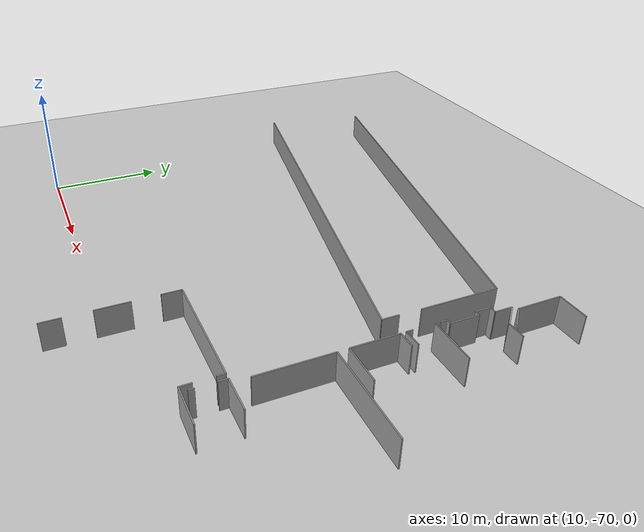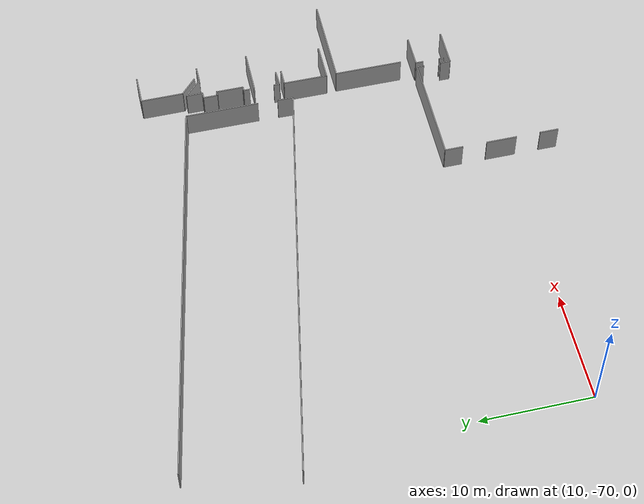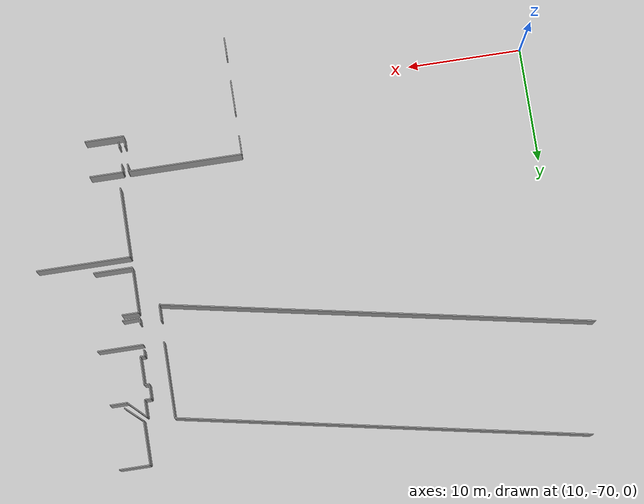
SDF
<sdf version="1.6">
 <world name="default">
  <model name="ground_plane">
   <static>1</static>
   <link name="link">
    <collision name="collision">
     <geometry><plane><normal>0 0 1</normal><size>100 100</size></plane></geometry>
     <surface><friction><ode><mu>100</mu><mu2>50</mu2></ode></friction></surface>
    </collision>
    <visual name="visual">
     <cast_shadows>0</cast_shadows>
     <geometry><plane><normal>0 0 1</normal><size>100 100</size></plane></geometry>
     <material>
      <script><uri>file://media/materials/scripts/gazebo.material</uri><name>Gazebo/Grey</name></script>
     </material>
    </visual>
   </link>
  </model>
  <model name="50023964">
   <static>1</static>
   <link name="Wall_0">
    <collision name="Wall_0_Collision">
     <geometry><box><size>1.6860690356 0.1 2.5</size></box></geometry>
     <pose>0.843034517799 0 1.25 0 0 0</pose>
    </collision>
    <visual name="Wall_0_Visual">
     <pose>0.843034517799 0 1.25 0 0 0</pose>
     <geometry><box><size>1.6860690356 0.1 2.5</size></box></geometry>
     <material>
      <script><uri>file://media/materials/scripts/gazebo.material</uri><name>Gazebo/Grey</name></script>
      <ambient>1 1 1 1</ambient>
     </material>
    </visual>
    <pose>117.97580261 -149.084119272 0 0 0 1.57079632679</pose>
   </link>
   <link name="Wall_1">
    <collision name="Wall_1_Collision">
     <geometry><box><size>2.77234765489 0.1 2.5</size></box></geometry>
     <pose>1.38617382744 0 1.25 0 0 0</pose>
    </collision>
    <visual name="Wall_1_Visual">
     <pose>1.38617382744 0 1.25 0 0 0</pose>
     <geometry><box><size>2.77234765489 0.1 2.5</size></box></geometry>
     <material>
      <script><uri>file://media/materials/scripts/gazebo.material</uri><name>Gazebo/Grey</name></script>
      <ambient>1 1 1 1</ambient>
     </material>
    </visual>
    <pose>117.97580261 -145.190435362 0 0 0 1.57079632679</pose>
   </link>
   <link name="Wall_2">
    <collision name="Wall_2_Collision">
     <geometry><box><size>1.64440633832 0.1 2.5</size></box></geometry>
     <pose>0.822203169159 0 1.25 0 0 0</pose>
    </collision>
    <visual name="Wall_2_Visual">
     <pose>0.822203169159 0 1.25 0 0 0</pose>
     <geometry><box><size>1.64440633832 0.1 2.5</size></box></geometry>
     <material>
      <script><uri>file://media/materials/scripts/gazebo.material</uri><name>Gazebo/Grey</name></script>
      <ambient>1 1 1 1</ambient>
     </material>
    </visual>
    <pose>117.97580261 -140.209202629 0 0 0 1.57079632679</pose>
   </link>
   <link name="Wall_3">
    <collision name="Wall_3_Collision">
     <geometry><box><size>9.94315836271 0.1 2.5</size></box></geometry>
     <pose>4.97157918135 0 1.25 0 0 0</pose>
    </collision>
    <visual name="Wall_3_Visual">
     <pose>4.97157918135 0 1.25 0 0 0</pose>
     <geometry><box><size>9.94315836271 0.1 2.5</size></box></geometry>
     <material>
      <script><uri>file://media/materials/scripts/gazebo.material</uri><name>Gazebo/Grey</name></script>
      <ambient>1 1 1 1</ambient>
     </material>
    </visual>
    <pose>117.97580261 -138.564796291 0 0 0 0.0</pose>
   </link>
   <link name="Wall_4">
    <collision name="Wall_4_Collision">
     <geometry><box><size>0.652122828745 0.1 2.5</size></box></geometry>
     <pose>0.326061414372 0 1.25 0 0 0</pose>
    </collision>
    <visual name="Wall_4_Visual">
     <pose>0.326061414372 0 1.25 0 0 0</pose>
     <geometry><box><size>0.652122828745 0.1 2.5</size></box></geometry>
     <material>
      <script><uri>file://media/materials/scripts/gazebo.material</uri><name>Gazebo/Grey</name></script>
      <ambient>1 1 1 1</ambient>
     </material>
    </visual>
    <pose>127.918960973 -138.564796291 0 0 0 -1.57079632679</pose>
   </link>
   <link name="Wall_5">
    <collision name="Wall_5_Collision">
     <geometry><box><size>0.913276809247 0.1 2.5</size></box></geometry>
     <pose>0.456638404624 0 1.25 0 0 0</pose>
    </collision>
    <visual name="Wall_5_Visual">
     <pose>0.456638404624 0 1.25 0 0 0</pose>
     <geometry><box><size>0.913276809247 0.1 2.5</size></box></geometry>
     <material>
      <script><uri>file://media/materials/scripts/gazebo.material</uri><name>Gazebo/Grey</name></script>
      <ambient>1 1 1 1</ambient>
     </material>
    </visual>
    <pose>127.918960973 -140.798831412 0 0 0 -1.57079632679</pose>
   </link>
   <link name="Wall_6">
    <collision name="Wall_6_Collision">
     <geometry><box><size>3.40033660411 0.1 2.5</size></box></geometry>
     <pose>1.70016830205 0 1.25 0 0 0</pose>
    </collision>
    <visual name="Wall_6_Visual">
     <pose>1.70016830205 0 1.25 0 0 0</pose>
     <geometry><box><size>3.40033660411 0.1 2.5</size></box></geometry>
     <material>
      <script><uri>file://media/materials/scripts/gazebo.material</uri><name>Gazebo/Grey</name></script>
      <ambient>1 1 1 1</ambient>
     </material>
    </visual>
    <pose>127.918960973 -141.712108221 0 0 0 0.0</pose>
   </link>
   <link name="Wall_21">
    <collision name="Wall_21_Collision">
     <geometry><box><size>0.448382077419 0.1 2.5</size></box></geometry>
     <pose>0.224191038709 0 1.25 0 0 0</pose>
    </collision>
    <visual name="Wall_21_Visual">
     <pose>0.224191038709 0 1.25 0 0 0</pose>
     <geometry><box><size>0.448382077419 0.1 2.5</size></box></geometry>
     <material>
      <script><uri>file://media/materials/scripts/gazebo.material</uri><name>Gazebo/Grey</name></script>
      <ambient>1 1 1 1</ambient>
     </material>
    </visual>
    <pose>128.425264361 -141.255342796 0 0 0 1.57079632679</pose>
   </link>
   <link name="Wall_22">
    <collision name="Wall_22_Collision">
     <geometry><box><size>0.719951732241 0.1 2.5</size></box></geometry>
     <pose>0.35997586612 0 1.25 0 0 0</pose>
    </collision>
    <visual name="Wall_22_Visual">
     <pose>0.35997586612 0 1.25 0 0 0</pose>
     <geometry><box><size>0.719951732241 0.1 2.5</size></box></geometry>
     <material>
      <script><uri>file://media/materials/scripts/gazebo.material</uri><name>Gazebo/Grey</name></script>
      <ambient>1 1 1 1</ambient>
     </material>
    </visual>
    <pose>128.425264361 -139.287034391 0 0 0 1.57079632679</pose>
   </link>
   <link name="Wall_23">
    <collision name="Wall_23_Collision">
     <geometry><box><size>2.89758978756 0.1 2.5</size></box></geometry>
     <pose>1.44879489378 0 1.25 0 0 0</pose>
    </collision>
    <visual name="Wall_23_Visual">
     <pose>1.44879489378 0 1.25 0 0 0</pose>
     <geometry><box><size>2.89758978756 0.1 2.5</size></box></geometry>
     <material>
      <script><uri>file://media/materials/scripts/gazebo.material</uri><name>Gazebo/Grey</name></script>
      <ambient>1 1 1 1</ambient>
     </material>
    </visual>
    <pose>128.425264361 -138.567082659 0 0 0 0.0</pose>
   </link>
   <link name="Wall_32">
    <collision name="Wall_32_Collision">
     <geometry><box><size>6.13051348004 0.1 2.5</size></box></geometry>
     <pose>3.06525674002 0 1.25 0 0 0</pose>
    </collision>
    <visual name="Wall_32_Visual">
     <pose>3.06525674002 0 1.25 0 0 0</pose>
     <geometry><box><size>6.13051348004 0.1 2.5</size></box></geometry>
     <material>
      <script><uri>file://media/materials/scripts/gazebo.material</uri><name>Gazebo/Grey</name></script>
      <ambient>1 1 1 1</ambient>
     </material>
    </visual>
    <pose>128.83452415 -137.215585405 0 0 0 1.57079632679</pose>
   </link>
   <link name="Wall_33">
    <collision name="Wall_33_Collision">
     <geometry><box><size>8.17579625925 0.1 2.5</size></box></geometry>
     <pose>4.08789812962 0 1.25 0 0 0</pose>
    </collision>
    <visual name="Wall_33_Visual">
     <pose>4.08789812962 0 1.25 0 0 0</pose>
     <geometry><box><size>8.17579625925 0.1 2.5</size></box></geometry>
     <material>
      <script><uri>file://media/materials/scripts/gazebo.material</uri><name>Gazebo/Grey</name></script>
      <ambient>1 1 1 1</ambient>
     </material>
    </visual>
    <pose>128.83452415 -131.085071925 0 0 0 0.0</pose>
   </link>
   <link name="Wall_103">
    <collision name="Wall_103_Collision">
     <geometry><box><size>0.538058492903 0.1 2.5</size></box></geometry>
     <pose>0.269029246451 0 1.25 0 0 0</pose>
    </collision>
    <visual name="Wall_103_Visual">
     <pose>0.269029246451 0 1.25 0 0 0</pose>
     <geometry><box><size>0.538058492903 0.1 2.5</size></box></geometry>
     <material>
      <script><uri>file://media/materials/scripts/gazebo.material</uri><name>Gazebo/Grey</name></script>
      <ambient>1 1 1 1</ambient>
     </material>
    </visual>
    <pose>128.790575085 -125.74513353 0 0 0 1.57079632679</pose>
   </link>
   <link name="Wall_104">
    <collision name="Wall_104_Collision">
     <geometry><box><size>3.98056587596 0.1 2.5</size></box></geometry>
     <pose>1.99028293798 0 1.25 0 0 0</pose>
    </collision>
    <visual name="Wall_104_Visual">
     <pose>1.99028293798 0 1.25 0 0 0</pose>
     <geometry><box><size>3.98056587596 0.1 2.5</size></box></geometry>
     <material>
      <script><uri>file://media/materials/scripts/gazebo.material</uri><name>Gazebo/Grey</name></script>
      <ambient>1 1 1 1</ambient>
     </material>
    </visual>
    <pose>128.790575085 -123.385602236 0 0 0 0.0</pose>
   </link>
   <link name="Wall_116">
    <collision name="Wall_116_Collision">
     <geometry><box><size>1.49210020066 0.1 2.5</size></box></geometry>
     <pose>0.74605010033 0 1.25 0 0 0</pose>
    </collision>
    <visual name="Wall_116_Visual">
     <pose>0.74605010033 0 1.25 0 0 0</pose>
     <geometry><box><size>1.49210020066 0.1 2.5</size></box></geometry>
     <material>
      <script><uri>file://media/materials/scripts/gazebo.material</uri><name>Gazebo/Grey</name></script>
      <ambient>1 1 1 1</ambient>
     </material>
    </visual>
    <pose>130.281540758 -125.686958179 0 0 0 -3.10259386462</pose>
   </link>
   <link name="Wall_117">
    <collision name="Wall_117_Collision">
     <geometry><box><size>1.9863672845 0.1 2.5</size></box></geometry>
     <pose>0.993183642252 0 1.25 0 0 0</pose>
    </collision>
    <visual name="Wall_117_Visual">
     <pose>0.993183642252 0 1.25 0 0 0</pose>
     <geometry><box><size>1.9863672845 0.1 2.5</size></box></geometry>
     <material>
      <script><uri>file://media/materials/scripts/gazebo.material</uri><name>Gazebo/Grey</name></script>
      <ambient>1 1 1 1</ambient>
     </material>
    </visual>
    <pose>131.158743768 -118.232129815 0 0 0 2.40975668548</pose>
   </link>
   <link name="Wall_118">
    <collision name="Wall_118_Collision">
     <geometry><box><size>3.82538366899 0.1 2.5</size></box></geometry>
     <pose>1.9126918345 0 1.25 0 0 0</pose>
    </collision>
    <visual name="Wall_118_Visual">
     <pose>1.9126918345 0 1.25 0 0 0</pose>
     <geometry><box><size>3.82538366899 0.1 2.5</size></box></geometry>
     <material>
      <script><uri>file://media/materials/scripts/gazebo.material</uri><name>Gazebo/Grey</name></script>
      <ambient>1 1 1 1</ambient>
     </material>
    </visual>
    <pose>129.680988219 -116.904766441 0 0 0 1.57517935093</pose>
   </link>
   <link name="Wall_119">
    <collision name="Wall_119_Collision">
     <geometry><box><size>2.65015401226 0.1 2.5</size></box></geometry>
     <pose>1.32507700613 0 1.25 0 0 0</pose>
    </collision>
    <visual name="Wall_119_Visual">
     <pose>1.32507700613 0 1.25 0 0 0</pose>
     <geometry><box><size>2.65015401226 0.1 2.5</size></box></geometry>
     <material>
      <script><uri>file://media/materials/scripts/gazebo.material</uri><name>Gazebo/Grey</name></script>
      <ambient>1 1 1 1</ambient>
     </material>
    </visual>
    <pose>129.664221524 -113.079419517 0 0 0 0.0</pose>
   </link>
   <link name="Wall_123">
    <collision name="Wall_123_Collision">
     <geometry><box><size>0.551776698104 0.1 2.5</size></box></geometry>
     <pose>0.275888349052 0 1.25 0 0 0</pose>
    </collision>
    <visual name="Wall_123_Visual">
     <pose>0.275888349052 0 1.25 0 0 0</pose>
     <geometry><box><size>0.551776698104 0.1 2.5</size></box></geometry>
     <material>
      <script><uri>file://media/materials/scripts/gazebo.material</uri><name>Gazebo/Grey</name></script>
      <ambient>1 1 1 1</ambient>
     </material>
    </visual>
    <pose>128.799212473 -122.952716649 0 0 0 1.57079632679</pose>
   </link>
   <link name="Wall_124">
    <collision name="Wall_124_Collision">
     <geometry><box><size>0.392239052428 0.1 2.5</size></box></geometry>
     <pose>0.196119526214 0 1.25 0 0 0</pose>
    </collision>
    <visual name="Wall_124_Visual">
     <pose>0.196119526214 0 1.25 0 0 0</pose>
     <geometry><box><size>0.392239052428 0.1 2.5</size></box></geometry>
     <material>
      <script><uri>file://media/materials/scripts/gazebo.material</uri><name>Gazebo/Grey</name></script>
      <ambient>1 1 1 1</ambient>
     </material>
    </visual>
    <pose>128.799212473 -122.400939951 0 0 0 0.0</pose>
   </link>
   <link name="Wall_125">
    <collision name="Wall_125_Collision">
     <geometry><box><size>2.450985996 0.1 2.5</size></box></geometry>
     <pose>1.225492998 0 1.25 0 0 0</pose>
    </collision>
    <visual name="Wall_125_Visual">
     <pose>1.225492998 0 1.25 0 0 0</pose>
     <geometry><box><size>2.450985996 0.1 2.5</size></box></geometry>
     <material>
      <script><uri>file://media/materials/scripts/gazebo.material</uri><name>Gazebo/Grey</name></script>
      <ambient>1 1 1 1</ambient>
     </material>
    </visual>
    <pose>129.191451526 -122.400939951 0 0 0 1.57079632679</pose>
   </link>
   <link name="Wall_126">
    <collision name="Wall_126_Collision">
     <geometry><box><size>0.419929503668 0.1 2.5</size></box></geometry>
     <pose>0.209964751834 0 1.25 0 0 0</pose>
    </collision>
    <visual name="Wall_126_Visual">
     <pose>0.209964751834 0 1.25 0 0 0</pose>
     <geometry><box><size>0.419929503668 0.1 2.5</size></box></geometry>
     <material>
      <script><uri>file://media/materials/scripts/gazebo.material</uri><name>Gazebo/Grey</name></script>
      <ambient>1 1 1 1</ambient>
     </material>
    </visual>
    <pose>129.191451526 -119.949953955 0 0 0 3.14159265359</pose>
   </link>
   <link name="Wall_127">
    <collision name="Wall_127_Collision">
     <geometry><box><size>1.27579308374 0.1 2.5</size></box></geometry>
     <pose>0.637896541869 0 1.25 0 0 0</pose>
    </collision>
    <visual name="Wall_127_Visual">
     <pose>0.637896541869 0 1.25 0 0 0</pose>
     <geometry><box><size>1.27579308374 0.1 2.5</size></box></geometry>
     <material>
      <script><uri>file://media/materials/scripts/gazebo.material</uri><name>Gazebo/Grey</name></script>
      <ambient>1 1 1 1</ambient>
     </material>
    </visual>
    <pose>128.771522022 -119.949953955 0 0 0 1.57079632679</pose>
   </link>
   <link name="Wall_128">
    <collision name="Wall_128_Collision">
     <geometry><box><size>0.568289352513 0.1 2.5</size></box></geometry>
     <pose>0.284144676257 0 1.25 0 0 0</pose>
    </collision>
    <visual name="Wall_128_Visual">
     <pose>0.284144676257 0 1.25 0 0 0</pose>
     <geometry><box><size>0.568289352513 0.1 2.5</size></box></geometry>
     <material>
      <script><uri>file://media/materials/scripts/gazebo.material</uri><name>Gazebo/Grey</name></script>
      <ambient>1 1 1 1</ambient>
     </material>
    </visual>
    <pose>128.771522022 -118.674160871 0 0 0 0.0</pose>
   </link>
   <link name="Wall_129">
    <collision name="Wall_129_Collision">
     <geometry><box><size>1.49020355022 0.1 2.5</size></box></geometry>
     <pose>0.74510177511 0 1.25 0 0 0</pose>
    </collision>
    <visual name="Wall_129_Visual">
     <pose>0.74510177511 0 1.25 0 0 0</pose>
     <geometry><box><size>1.49020355022 0.1 2.5</size></box></geometry>
     <material>
      <script><uri>file://media/materials/scripts/gazebo.material</uri><name>Gazebo/Grey</name></script>
      <ambient>1 1 1 1</ambient>
     </material>
    </visual>
    <pose>129.339811375 -118.674160871 0 0 0 1.57079632679</pose>
   </link>
   <link name="Wall_130">
    <collision name="Wall_130_Collision">
     <geometry><box><size>2.10704271308 0.1 2.5</size></box></geometry>
     <pose>1.05352135654 0 1.25 0 0 0</pose>
    </collision>
    <visual name="Wall_130_Visual">
     <pose>1.05352135654 0 1.25 0 0 0</pose>
     <geometry><box><size>2.10704271308 0.1 2.5</size></box></geometry>
     <material>
      <script><uri>file://media/materials/scripts/gazebo.material</uri><name>Gazebo/Grey</name></script>
      <ambient>1 1 1 1</ambient>
     </material>
    </visual>
    <pose>129.339811375 -117.183957321 0 0 0 -0.764168301524</pose>
   </link>
   <link name="Wall_131">
    <collision name="Wall_131_Collision">
     <geometry><box><size>1.47064240577 0.1 2.5</size></box></geometry>
     <pose>0.735321202883 0 1.25 0 0 0</pose>
    </collision>
    <visual name="Wall_131_Visual">
     <pose>0.735321202883 0 1.25 0 0 0</pose>
     <geometry><box><size>1.47064240577 0.1 2.5</size></box></geometry>
     <material>
      <script><uri>file://media/materials/scripts/gazebo.material</uri><name>Gazebo/Grey</name></script>
      <ambient>1 1 1 1</ambient>
     </material>
    </visual>
    <pose>130.861007907 -118.641897685 0 0 0 0.0</pose>
   </link>
   <link name="Wall_138">
    <collision name="Wall_138_Collision">
     <geometry><box><size>3.38077545966 0.1 2.5</size></box></geometry>
     <pose>1.69038772983 0 1.25 0 0 0</pose>
    </collision>
    <visual name="Wall_138_Visual">
     <pose>1.69038772983 0 1.25 0 0 0</pose>
     <geometry><box><size>3.38077545966 0.1 2.5</size></box></geometry>
     <material>
      <script><uri>file://media/materials/scripts/gazebo.material</uri><name>Gazebo/Grey</name></script>
      <ambient>1 1 1 1</ambient>
     </material>
    </visual>
    <pose>128.790575085 -130.163157728 0 0 0 0.0</pose>
   </link>
   <link name="Wall_141">
    <collision name="Wall_141_Collision">
     <geometry><box><size>1.45311358801 0.1 2.5</size></box></geometry>
     <pose>0.726556794005 0 1.25 0 0 0</pose>
    </collision>
    <visual name="Wall_141_Visual">
     <pose>0.726556794005 0 1.25 0 0 0</pose>
     <geometry><box><size>1.45311358801 0.1 2.5</size></box></geometry>
     <material>
      <script><uri>file://media/materials/scripts/gazebo.material</uri><name>Gazebo/Grey</name></script>
      <ambient>1 1 1 1</ambient>
     </material>
    </visual>
    <pose>130.24876949 -126.186910546 0 0 0 3.14159265359</pose>
   </link>
   <link name="Wall_142">
    <collision name="Wall_142_Collision">
     <geometry><box><size>3.97625042785 0.1 2.5</size></box></geometry>
     <pose>1.98812521392 0 1.25 0 0 0</pose>
    </collision>
    <visual name="Wall_142_Visual">
     <pose>1.98812521392 0 1.25 0 0 0</pose>
     <geometry><box><size>3.97625042785 0.1 2.5</size></box></geometry>
     <material>
      <script><uri>file://media/materials/scripts/gazebo.material</uri><name>Gazebo/Grey</name></script>
      <ambient>1 1 1 1</ambient>
     </material>
    </visual>
    <pose>128.795655902 -126.186910546 0 0 0 -1.57207411807</pose>
   </link>
   <link name="Wall_144">
    <collision name="Wall_144_Collision">
     <geometry><box><size>35.7706604662 0.1 2.5</size></box></geometry>
     <pose>17.8853302331 0 1.25 0 0 0</pose>
    </collision>
    <visual name="Wall_144_Visual">
     <pose>17.8853302331 0 1.25 0 0 0</pose>
     <geometry><box><size>35.7706604662 0.1 2.5</size></box></geometry>
     <material>
      <script><uri>file://media/materials/scripts/gazebo.material</uri><name>Gazebo/Grey</name></script>
      <ambient>1 1 1 1</ambient>
     </material>
    </visual>
    <pose>91.8936839097 -109.919151504 0 0 0 -0.191789495719</pose>
   </link>
   <link name="Wall_145">
    <collision name="Wall_145_Collision">
     <geometry><box><size>6.6312279699 0.1 2.5</size></box></geometry>
     <pose>3.31561398495 0 1.25 0 0 0</pose>
    </collision>
    <visual name="Wall_145_Visual">
     <pose>3.31561398495 0 1.25 0 0 0</pose>
     <geometry><box><size>6.6312279699 0.1 2.5</size></box></geometry>
     <material>
      <script><uri>file://media/materials/scripts/gazebo.material</uri><name>Gazebo/Grey</name></script>
      <ambient>1 1 1 1</ambient>
     </material>
    </visual>
    <pose>127.008478613 -116.73760757 0 0 0 -1.57079632679</pose>
   </link>
   <link name="Wall_146">
    <collision name="Wall_146_Collision">
     <geometry><box><size>1.42371849093 0.1 2.5</size></box></geometry>
     <pose>0.711859245464 0 1.25 0 0 0</pose>
    </collision>
    <visual name="Wall_146_Visual">
     <pose>0.711859245464 0 1.25 0 0 0</pose>
     <geometry><box><size>1.42371849093 0.1 2.5</size></box></geometry>
     <material>
      <script><uri>file://media/materials/scripts/gazebo.material</uri><name>Gazebo/Grey</name></script>
      <ambient>1 1 1 1</ambient>
     </material>
    </visual>
    <pose>126.969102283 -125.18954622 0 0 0 -1.58096728227</pose>
   </link>
   <link name="Wall_147">
    <collision name="Wall_147_Collision">
     <geometry><box><size>37.6171405251 0.1 2.5</size></box></geometry>
     <pose>18.8085702626 0 1.25 0 0 0</pose>
    </collision>
    <visual name="Wall_147_Visual">
     <pose>18.8085702626 0 1.25 0 0 0</pose>
     <geometry><box><size>37.6171405251 0.1 2.5</size></box></geometry>
     <material>
      <script><uri>file://media/materials/scripts/gazebo.material</uri><name>Gazebo/Grey</name></script>
      <ambient>1 1 1 1</ambient>
     </material>
    </visual>
    <pose>126.954621955 -126.61319107 0 0 0 2.95132659484</pose>
   </link>
   <pose>-82.25 74.5341192722 0 0 0 0</pose>
  </model>
 </world>
</sdf>
